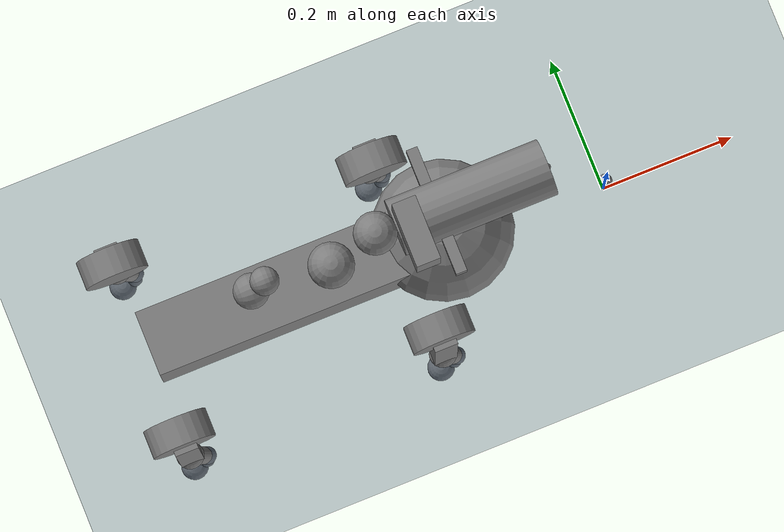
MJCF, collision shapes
<mujoco model="umi_on_legs scene">
    <include file="umi_on_legs_mjx.xml" />

    <statistic center="0 0 0.1" extent="0.8" />

    <visual>
        <headlight diffuse="0.6 0.6 0.6" ambient="0.3 0.3 0.3" specular="0 0 0" />
        <rgba haze="0.15 0.25 0.35 1" />
        <global azimuth="-130" elevation="-20" />
    </visual>

    <asset>
        <texture type="skybox" builtin="gradient" rgb1="0.3 0.5 0.7" rgb2="0 0 0" width="512"
            height="3072" />
        <texture type="2d" name="groundplane" builtin="checker" mark="edge" rgb1="0.2 0.3 0.4"
            rgb2="0.1 0.2 0.3"
            markrgb="0.8 0.8 0.8" width="300" height="300" />
        <material name="groundplane" texture="groundplane" texuniform="true" texrepeat="5 5"
            reflectance="0.2" />
    </asset>

    <worldbody>
        <light pos="0 0 1.5" dir="0 0 -1" directional="true" />
        <geom name="floor" size="0 0 0.05" type="plane" material="groundplane" />
        <body name="target" pos="0 0 0.1" mocap="true" quat="1 0 0 0">
            <site name="target_site" pos="0 0 0" size="0.01" />
        </body>
    </worldbody>
</mujoco>

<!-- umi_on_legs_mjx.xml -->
<mujoco model="umi_on_legs">
    <compiler angle="radian" meshdir="assets" texturedir="assets" autolimits="true" />

    <option iterations="2" ls_iterations="5" timestep="0.01">
        <flag eulerdamp="disable" />
    </option>

    <default>
        <geom friction="0.6" margin="0.001" condim="1" />
        <joint axis="0 1 0" />
        <motor ctrlrange="-23.7 23.7" />
        <default class="abduction">
            <joint axis="1 0 0" range="-1.0472 1.0472" />
            <position forcerange="-23.7 23.7" ctrlrange="-1.0472 1.0472" />
        </default>
        <default class="hip">
            <position forcerange="-23.7 23.7" ctrlrange="-1.5708 3.4907" />
            <default class="front_hip">
                <joint range="-1.5708 3.4907" />
            </default>
            <default class="back_hip">
                <joint range="-0.5236 4.5379" />
            </default>
        </default>
        <default class="knee">
            <position forcerange="-45.43 45.43" ctrlrange="-2.7227 -0.83776" />
            <joint range="-2.7227 -0.83776" />
            <motor ctrlrange="-45.43 45.43" />
        </default>
        <default class="visual">
            <geom type="mesh" contype="0" conaffinity="0" group="2" />
        </default>
        <default class="collision">
            <geom group="3" />
            <default class="foot">
                <geom size="0.02" pos="-0.002 0 -0.213" priority="1"
                    friction="0.8 0.02 0.01" condim="3" />
            </default>
        </default>
        <default class="arx5">
            <default class="arx5_collision">
                <geom type="cylinder" group="3" mass="0" density="0" />
            </default>
            <default class="finray_collision">
                <geom condim="4" solimp="2 1 0.01" group="3" solref="0.01 1"
                    friction="1 0.5 0.0005"
                    priority="1" mass="0.0" />
            </default>
            <default class="finger_joint">
                <joint armature="0.001" damping="0.1" frictionloss="0.01" />
            </default>
        </default>
        <default class='disabled_collision'>
            <geom contype="0" conaffinity="0" group="5" />
        </default>
    </default>

    <asset>
        <material name="metal" rgba=".9 .95 .95 1" />
        <material name="black" rgba="0 0 0 1" />
        <material name="white" rgba="1 1 1 1" />
        <material name="gray" rgba="0.671705 0.692426 0.774270 1" />

        <mesh file="base_0.obj" />
        <mesh file="base_1.obj" />
        <mesh file="base_2.obj" />
        <mesh file="base_3.obj" />
        <mesh file="base_4.obj" />
        <mesh file="hip_0.obj" />
        <mesh file="hip_1.obj" />
        <mesh file="thigh_0.obj" />
        <mesh file="thigh_1.obj" />
        <mesh file="thigh_mirror_0.obj" />
        <mesh file="thigh_mirror_1.obj" />
        <mesh file="calf_0.obj" />
        <mesh file="calf_1.obj" />
        <mesh file="calf_mirror_0.obj" />
        <mesh file="calf_mirror_1.obj" />
        <mesh file="foot.obj" />

        <mesh file="base_link.STL" name="BaseLink" />
        <mesh file="link1.STL" name="Link1" />
        <mesh file="link2.STL" name="Link2" />
        <mesh file="link3.STL" name="Link3" />
        <mesh file="link4.STL" name="Link4" />
        <mesh file="link5.STL" name="Link5" />
        <mesh file="arx5_gripper_motor_decimated.obj" name="arx_gripper_motor" />
        <mesh file="gopro_mount.obj" name="go_pro_mount" />
        <texture type="2d" name="texture"
            file="finray/one_piece_wide_grasp_finray_finger_color.png" />
        <material name="finray_material" texture="texture" specular="0.5" shininess="0.0" />
        <mesh name="finger" file="finray/one_piece_wide_grasp_finray_finger_decimated.obj"
            scale="0.76923076923 1.0 1.0" />
        <mesh name="finger_collider" file="finray/collider.obj"
            scale="0.76923076923 1.0 1.0" />
        <mesh name="gopro" file="gopro/assets/gopro.obj" />
        <mesh name="gopro_case" file="gopro/assets/gopro_case.obj" />
    </asset>

    <worldbody>
        <body name="base" pos="-0.5 0 0.3" quat="1 0 0 0">
            <freejoint />
            <camera name="body_cam" mode="trackcom" pos="1.2 1.2 0.5"
                xyaxes="-0.766 0.643 -0.000 -0.127 -0.151 0.980" />

            <geom name="head" class="foot" pos="0.25 0 0" size="0.1" />
            <inertial pos="0.021112 0 -0.005366" quat="-0.000543471 0.713435 -0.00173769 0.700719"
                mass="6.921"
                diaginertia="0.107027 0.0980771 0.0244531" />
            <geom mesh="base_0" material="black" class="visual" />
            <geom mesh="base_1" material="black" class="visual" />
            <geom mesh="base_2" material="black" class="visual" />
            <geom mesh="base_3" material="white" class="visual" />
            <geom mesh="base_4" material="gray" class="visual" />
            <geom size="0.1881 0.04675 0.057" type="box" class="disabled_collision" />
            <geom size="0.05 0.045" pos="0.285 0 0.01" type="cylinder" class="disabled_collision" />
            <geom size="0.047" pos="0.293 0 -0.06" class="disabled_collision" />
            <!-- NOTE the following transforms were calculated in blender. -->
            <body name="FL_hip" pos="0.1934 0.0465 0">
                <inertial pos="-0.0054 0.00194 -0.000105" quat="0.497014 0.499245 0.505462 0.498237"
                    mass="0.678"
                    diaginertia="0.00088403 0.000596003 0.000479967" />
                <joint name="FL_hip_joint" class="abduction" />
                <geom mesh="hip_0" material="metal" class="visual" />
                <geom mesh="hip_1" material="gray" class="visual" />
                <geom size="0.046 0.02" pos="0 0.08 0" quat="1 1 0 0" type="cylinder"
                    class="disabled_collision" />
                <body name="FL_thigh" pos="0 0.0955 0">
                    <inertial pos="-0.00374 -0.0223 -0.0327"
                        quat="0.829533 0.0847635 -0.0200632 0.551623"
                        mass="1.152"
                        diaginertia="0.00594973 0.00584149 0.000878787" />
                    <joint name="FL_thigh_joint" class="front_hip" />
                    <geom mesh="thigh_0" material="metal" class="visual" />
                    <geom mesh="thigh_1" material="gray" class="visual" />
                    <geom size="0.1065 0.01225 0.017" pos="0 0 -0.1065" quat="0.707107 0 0.707107 0"
                        type="box" class="disabled_collision" />
                    <body name="FL_calf" pos="0 0 -0.213">
                        <geom name="FL_elbow" class="foot" pos="0 0 0.0" />
                        <inertial pos="0.00629595 -0.000622121 -0.141417"
                            quat="0.710672 0.00154099 -0.00450087 0.703508"
                            mass="0.241352" diaginertia="0.0014901 0.00146356 5.31397e-05" />
                        <joint name="FL_calf_joint" class="knee" />
                        <geom mesh="calf_0" material="gray" class="visual" />
                        <geom mesh="calf_1" material="black" class="visual" />
                        <geom size="0.012 0.06" pos="0.008 0 -0.06" quat="0.994493 0 -0.104807 0"
                            type="cylinder" class="disabled_collision" />
                        <geom size="0.011 0.0325" pos="0.02 0 -0.148" quat="0.999688 0 0.0249974 0"
                            type="cylinder" class="disabled_collision" />
                        <geom pos="0 0 -0.213" mesh="foot" class="visual" material="black" />
                        <geom name="FL" class="foot" />
                    </body>
                </body>
            </body>
            <body name="FR_hip" pos="0.1934 -0.0465 0">
                <inertial pos="-0.0054 -0.00194 -0.000105"
                    quat="0.498237 0.505462 0.499245 0.497014"
                    mass="0.678"
                    diaginertia="0.00088403 0.000596003 0.000479967" />
                <joint name="FR_hip_joint" class="abduction" />
                <geom mesh="hip_0" material="metal" class="visual" quat="4.63268e-05 1 0 0" />
                <geom mesh="hip_1" material="gray" class="visual" quat="4.63268e-05 1 0 0" />
                <geom size="0.046 0.02" pos="0 -0.08 0" quat="0.707107 0.707107 0 0" type="cylinder"
                    class="disabled_collision" />
                <body name="FR_thigh" pos="0 -0.0955 0">
                    <inertial pos="-0.00374 0.0223 -0.0327"
                        quat="0.551623 -0.0200632 0.0847635 0.829533"
                        mass="1.152"
                        diaginertia="0.00594973 0.00584149 0.000878787" />
                    <joint name="FR_thigh_joint" class="front_hip" />
                    <geom mesh="thigh_mirror_0" material="metal" class="visual" />
                    <geom mesh="thigh_mirror_1" material="gray" class="visual" />
                    <geom size="0.1065 0.01225 0.017" pos="0 0 -0.1065" quat="0.707107 0 0.707107 0"
                        type="box" class="disabled_collision" />
                    <body name="FR_calf" pos="0 0 -0.213">
                        <geom name="FR_elbow" class="foot" pos="0 0 0.0" />
                        <inertial pos="0.00629595 0.000622121 -0.141417"
                            quat="0.703508 -0.00450087 0.00154099 0.710672"
                            mass="0.241352" diaginertia="0.0014901 0.00146356 5.31397e-05" />
                        <joint name="FR_calf_joint" class="knee" />
                        <geom mesh="calf_mirror_0" material="gray" class="visual" />
                        <geom mesh="calf_mirror_1" material="black" class="visual" />
                        <geom size="0.013 0.06" pos="0.01 0 -0.06" quat="0.995004 0 -0.0998334 0"
                            type="cylinder" class="disabled_collision" />
                        <geom size="0.011 0.0325" pos="0.02 0 -0.148" quat="0.999688 0 0.0249974 0"
                            type="cylinder" class="disabled_collision" />
                        <geom pos="0 0 -0.213" mesh="foot" class="visual" material="black" />
                        <geom name="FR" class="foot" />
                    </body>
                </body>
            </body>
            <body name="RL_hip" pos="-0.1934 0.0465 0">
                <inertial pos="0.0054 0.00194 -0.000105" quat="0.505462 0.498237 0.497014 0.499245"
                    mass="0.678"
                    diaginertia="0.00088403 0.000596003 0.000479967" />
                <joint name="RL_hip_joint" class="abduction" />
                <geom mesh="hip_0" material="metal" class="visual" quat="4.63268e-05 0 1 0" />
                <geom mesh="hip_1" material="gray" class="visual" quat="4.63268e-05 0 1 0" />
                <geom size="0.046 0.02" pos="0 0.08 0" quat="0.707107 0.707107 0 0" type="cylinder"
                    class="disabled_collision" />
                <body name="RL_thigh" pos="0 0.0955 0">
                    <inertial pos="-0.00374 -0.0223 -0.0327"
                        quat="0.829533 0.0847635 -0.0200632 0.551623"
                        mass="1.152"
                        diaginertia="0.00594973 0.00584149 0.000878787" />
                    <joint name="RL_thigh_joint" class="back_hip" />
                    <geom mesh="thigh_0" material="metal" class="visual" />
                    <geom mesh="thigh_1" material="gray" class="visual" />
                    <geom size="0.1065 0.01225 0.017" pos="0 0 -0.1065" quat="0.707107 0 0.707107 0"
                        type="box" class="disabled_collision" />
                    <body name="RL_calf" pos="0 0 -0.213">
                        <geom name="RL_elbow" class="foot" pos="0 0 0.0" />
                        <inertial pos="0.00629595 -0.000622121 -0.141417"
                            quat="0.710672 0.00154099 -0.00450087 0.703508"
                            mass="0.241352" diaginertia="0.0014901 0.00146356 5.31397e-05" />
                        <joint name="RL_calf_joint" class="knee" />
                        <geom mesh="calf_0" material="gray" class="visual" />
                        <geom mesh="calf_1" material="black" class="visual" />
                        <geom size="0.013 0.06" pos="0.01 0 -0.06" quat="0.995004 0 -0.0998334 0"
                            type="cylinder" class="disabled_collision" />
                        <geom size="0.011 0.0325" pos="0.02 0 -0.148" quat="0.999688 0 0.0249974 0"
                            type="cylinder" class="disabled_collision" />
                        <geom pos="0 0 -0.213" mesh="foot" class="visual" material="black" />
                        <geom name="RL" class="foot" />
                    </body>
                </body>
            </body>
            <body name="RR_hip" pos="-0.1934 -0.0465 0">
                <inertial pos="0.0054 -0.00194 -0.000105" quat="0.499245 0.497014 0.498237 0.505462"
                    mass="0.678"
                    diaginertia="0.00088403 0.000596003 0.000479967" />
                <joint name="RR_hip_joint" class="abduction" />
                <geom mesh="hip_0" material="metal" class="visual"
                    quat="2.14617e-09 4.63268e-05 4.63268e-05 -1" />
                <geom mesh="hip_1" material="gray" class="visual"
                    quat="2.14617e-09 4.63268e-05 4.63268e-05 -1" />
                <geom size="0.046 0.02" pos="0 -0.08 0" quat="0.707107 0.707107 0 0" type="cylinder"
                    class="disabled_collision" />
                <body name="RR_thigh" pos="0 -0.0955 0">
                    <inertial pos="-0.00374 0.0223 -0.0327"
                        quat="0.551623 -0.0200632 0.0847635 0.829533"
                        mass="1.152"
                        diaginertia="0.00594973 0.00584149 0.000878787" />
                    <joint name="RR_thigh_joint" class="back_hip" />
                    <geom mesh="thigh_mirror_0" material="metal" class="visual" />
                    <geom mesh="thigh_mirror_1" material="gray" class="visual" />
                    <geom size="0.1065 0.01225 0.017" pos="0 0 -0.1065" quat="0.707107 0 0.707107 0"
                        type="box" class="disabled_collision" />
                    <body name="RR_calf" pos="0 0 -0.213">
                        <geom name="RR_elbow" class="foot" pos="0 0 0.0" />
                        <inertial pos="0.00629595 0.000622121 -0.141417"
                            quat="0.703508 -0.00450087 0.00154099 0.710672"
                            mass="0.241352" diaginertia="0.0014901 0.00146356 5.31397e-05" />
                        <joint name="RR_calf_joint" class="knee" />
                        <geom mesh="calf_mirror_0" material="gray" class="visual" />
                        <geom mesh="calf_mirror_1" material="black" class="visual" />
                        <geom size="0.013 0.06" pos="0.01 0 -0.06" quat="0.995004 0 -0.0998334 0"
                            type="cylinder" class="disabled_collision" />
                        <geom size="0.011 0.0325" pos="0.02 0 -0.148" quat="0.999688 0 0.0249974 0"
                            type="cylinder" class="disabled_collision" />
                        <geom pos="0 0 -0.213" mesh="foot" class="visual" material="black" />
                        <geom name="RR" class="foot" />
                    </body>
                </body>
            </body>

            <body name="arx5_base_link" pos="0.085 0 0.094">
                <inertial pos="-2.9972E-05 3.056E-05 0.027301"
                    mass="0.44038"
                    diaginertia="0.00017 0.00018 0.00016"
                />
                <geom class="visual" mesh="BaseLink" />
                <geom size="0.0325 0.0255" pos="0 0 0.0255" class="disabled_collision" />
                <body name="link1" pos="0 0 0.0603">
                    <inertial pos="0.00609525411893452 -0.00429681977500749 0.0179590247477389"
                        mass="0.0608351104988555"
                        diaginertia="0.00008 0.00003 0.00007" />
                    <joint name="joint1" axis="0 0 1" range="-3.141592653589793 3.141592653589793"
                        class="arx5" />
                    <geom class="visual" mesh="Link1" />
                    <body name="link2" pos="0.02 0 0.0402">
                        <inertial pos="-0.132382037190567 0.00220380675553821 0.000111790164679923"
                            mass="1.0733279014126"
                            diaginertia="0.00050 0.01596 0.01602" />
                        <joint name="joint2" axis="0 1 0" range="0 3.66519" class="arx5" />
                        <geom class="visual" mesh="Link2" />
                        <geom size="0.025 0.155" pos="-0.135 0 0" quat="1 0 1 0"
                            class="disabled_collision" />
                        <body name="link3" pos="-0.264 0 0" euler="-3.1416 0 0">
                            <inertial
                                pos="0.187203287369961 -0.000305676361444925 -0.0514832866415513"
                                mass="0.499404738025019"
                                diaginertia="0.00033 0.00387 0.00383" />
                            <joint name="joint3" axis="0 1 0" range="0 3.141592653589793"
                                class="arx5" />
                            <geom class="visual" mesh="Link3" />
                            <geom size="0.02 0.11" pos="0.15 0 -0.055" quat="1 0 1 0"
                                class="disabled_collision" />
                            <body name="link4" pos="0.245 0 -0.056">
                                <inertial
                                    pos="0.0388884702662706 0.00295168681334743 -0.0353282735009622"
                                    mass="0.0809712553169999" diaginertia="0.00013 0.00016 0.00010" />
                                <joint name="joint4" axis="0 1 0"
                                    range="-1.57079632679 1.57079632679" class="arx5" />
                                <geom class="visual" mesh="Link4" />
                                <geom size="0.03 0.054" pos="0.06575 -0.001 -0.03"
                                    class="disabled_collision" />
                                <body name="link5" pos="0.06575 -0.001 -0.0825">
                                    <inertial
                                        pos="0.00289956909960302 3.15826689885766E-05 0.0526188859211408"
                                        mass="0.602357399313257"
                                        diaginertia="0.00072 0.00069 0.00021" />
                                    <geom size="0.025 0.02" pos="0.055 0.00 0.083"
                                        quat="1 0 1 0"
                                        class="disabled_collision" />
                                    <joint name="joint5" axis="0 0 1"
                                        range="-1.57079632679 1.57079632679" class="arx5" />
                                    <geom class="visual" mesh="Link5" />
                                    <body name="link6" pos="0.02845 0 0.0825" euler="-3.1416 0 0">
                                        <site name="end_effector" pos="0.22 0 0"
                                            euler="0 1.57079632679 -1.57079632679"
                                            group="1"
                                        />
                                        <joint name="joint6" axis="1 0 0"
                                            range="-1.57079632679 1.57079632679" class="arx5" />
                                        <geom type="box" size="0.01 0.09 0.008"
                                            pos="0.06 0.00 0.00"
                                            quat="1 0 1 0"
                                            class="disabled_collision" mass="0.0" />

                                        <geom class="visual" mesh="arx_gripper_motor" mass="0.5" />
                                        <geom class="visual" mesh="go_pro_mount" pos="0.053 0 0"
                                            mass="0.2" />
                                        <geom name="gripper" class="arx5_collision"
                                            pos="0.11 0.0 0.0"
                                            euler="0 1.57079632679 0"
                                            size="0.04 0.11" />
                                        <body name="gopro"
                                            euler="0 1.57079632679 -1.57079632679"
                                            pos="0.018 -0.02 0.045">
                                            <geom size="0.045 0.035 0.017"
                                                pos="0.006 -0.029 0.002"
                                                class="disabled_collision" mass="0.0" type="box" />
                                            <geom class="visual" mesh="gopro" mass="0.153" />
                                            <geom class="visual" mesh="gopro_case" mass="0.075" />
                                            <!-- fisheye adapter Max Lens Mod 2.0 -->
                                        </body>
                                        <body name="left_finger" pos="0.072 0.0 0.0"
                                            euler="3.14159265359 1.57079632679 0">
                                            <geom mesh="finger" type="mesh" class="visual"
                                                mass="0.09" material="finray_material" />
                                            <geom mesh="finger_collider" type="mesh"
                                                class="disabled_collision" />
                                        </body>
                                        <body name="right_finger" pos="0.072 0.0 0.0"
                                            euler="0 1.57079632679 0.0">
                                            <geom mesh="finger" type="mesh" class="visual"
                                                mass="0.09" material="finray_material" />
                                            <geom mesh="finger_collider" type="mesh"
                                                class="disabled_collision" />
                                        </body>
                                    </body>
                                </body>
                            </body>
                        </body>
                    </body>
                </body>
            </body>
        </body>
    </worldbody>

    <actuator>
        <position kp="30.0" kv="0.5" forcerange="-23.7 23.7" ctrlrange="-1.0472 1.0472"
            name="FL_hip_joint" joint="FL_hip_joint" />
        <position kp="30.0" kv="0.5" forcerange="-23.7 23.7" ctrlrange="-1.5708 3.4907"
            name="FL_thigh_joint" joint="FL_thigh_joint" />
        <position kp="30.0" kv="0.5" forcerange="-45.43 45.43" ctrlrange="-2.7227 -0.83776"
            name="FL_calf_joint" joint="FL_calf_joint" />
        <position kp="30.0" kv="0.5" forcerange="-23.7 23.7" ctrlrange="-1.0472 1.0472"
            name="FR_hip_joint" joint="FR_hip_joint" />
        <position kp="30.0" kv="0.5" forcerange="-23.7 23.7" ctrlrange="-1.5708 3.4907"
            name="FR_thigh_joint" joint="FR_thigh_joint" />
        <position kp="30.0" kv="0.5" forcerange="-45.43 45.43" ctrlrange="-2.7227 -0.83776"
            name="FR_calf_joint" joint="FR_calf_joint" />
        <position kp="30.0" kv="0.5" forcerange="-23.7 23.7" ctrlrange="-1.0472 1.0472"
            name="RL_hip_joint" joint="RL_hip_joint" />
        <position kp="30.0" kv="0.5" forcerange="-23.7 23.7" ctrlrange="-0.5236 4.5379"
            name="RL_thigh_joint" joint="RL_thigh_joint" />
        <position kp="30.0" kv="0.5" forcerange="-45.43 45.43" ctrlrange="-2.7227 -0.83776"
            name="RL_calf_joint" joint="RL_calf_joint" />
        <position kp="30.0" kv="0.5" forcerange="-23.7 23.7" ctrlrange="-1.0472 1.0472"
            name="RR_hip_joint" joint="RR_hip_joint" />
        <position kp="30.0" kv="0.5" forcerange="-23.7 23.7" ctrlrange="-0.5236 4.5379"
            name="RR_thigh_joint" joint="RR_thigh_joint" />
        <position kp="30.0" kv="0.5" forcerange="-45.43 45.43" ctrlrange="-2.7227 -0.83776"
            name="RR_calf_joint" joint="RR_calf_joint" />

        <position class="arx5" name="joint1" joint="joint1" kp="20" kv="0.5" forcerange="-20 20"
            ctrlrange="-3.141592653589793 3.141592653589793" />
        <position class="arx5" name="joint2" joint="joint2" kp="20" kv="0.5" forcerange="-20 20"
            ctrlrange="0 3.66519" />
        <position class="arx5" name="joint3" joint="joint3" kp="20" kv="0.5" forcerange="-15 15"
            ctrlrange="0 3.141592653589793" />
        <position class="arx5" name="joint4" joint="joint4" kp="10" kv="0.2" forcerange="-7 7"
            ctrlrange="-1.57079632679 1.57079632679" />
        <position class="arx5" name="joint5" joint="joint5" kp="10" kv="0.2" forcerange="-5 5"
            ctrlrange="-1.57079632679 1.57079632679" />
        <position class="arx5" name="joint6" joint="joint6" kp="5" kv="0.1" forcerange="-5 5"
            ctrlrange="-1.57079632679 1.57079632679" />
    </actuator>

    <sensor>
        <!-- TODO use reftype and refname to handle local transformations -->
        <framelinvel name='trunk_root_lin_vel' objtype="xbody" objname="base" />
        <frameangvel name='trunk_root_ang_vel' objtype="xbody" objname="base" />
    </sensor>

    <keyframe>
        <key name="home"
            qpos="-0.5 0 0.3 1 0 0 0 0 0.9 -1.8 0 0.9 -1.8 0 0.9 -1.8 0 0.9 -1.8 0.0 0.3 0.5 0.0 0.0 0.0"
            ctrl="0 0.9 -1.8 0 0.9 -1.8 0 0.9 -1.8 0 0.9 -1.8 0.0 0.3 0.5 0.0 0.0 0.0"
        />
    </keyframe>

    <contact>
        <!-- only allow link6 to collide with base -->
        <exclude body1="link6" body2="FL_calf" />
        <exclude body1="link6" body2="FR_calf" />
        <exclude body1="link6" body2="RL_calf" />
        <exclude body1="link6" body2="RR_calf" />

        <!-- only allow back legs to collide with each other -->
        <exclude body1="RL_calf" body2="base" />
        <exclude body1="RL_calf" body2="FL_calf" />
        <exclude body1="RL_calf" body2="FR_calf" />

        <exclude body1="RR_calf" body2="base" />
        <exclude body1="RR_calf" body2="FL_calf" />
        <exclude body1="RR_calf" body2="FR_calf" />
    </contact>

</mujoco>
